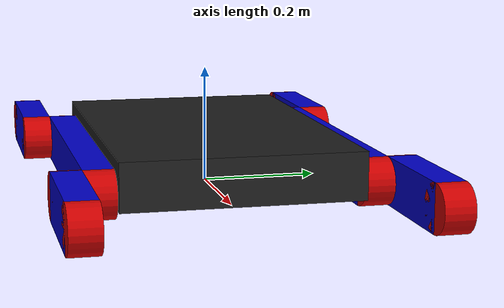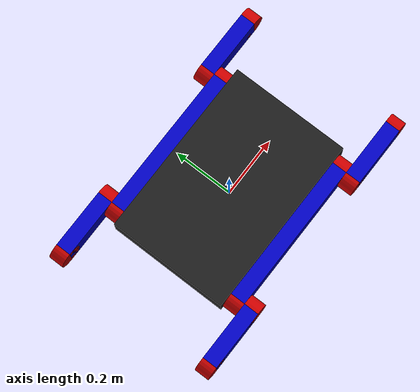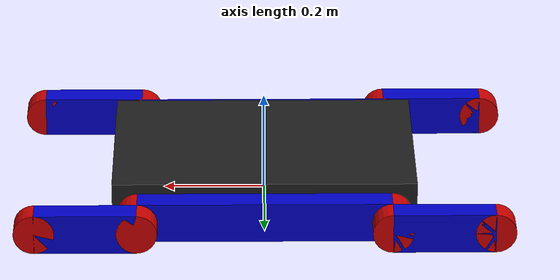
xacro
<?xml version="1.0"?>
<robot xmlns:xacro="http://ros.org/wiki/xacro" name="walrus">

  <!-- Included URDF/XACRO Files -->
  <xacro:include filename="$(find walrus_description)/urdf/base.urdf.xacro" />
  <xacro:include filename="$(find walrus_description)/urdf/simple_transform.urdf.xacro" />

  <property name="robot_ns" value="walrus" />

  <xacro:walrus robot_ns="${robot_ns}"/>

  <gazebo>
    <plugin name="gazebo_ros_control" filename="libgazebo_ros_control.so">
      <robotNamespace>/walrus</robotNamespace>
      <robotSimType>walrus_gazebo/WalrusHWSim</robotSimType>
    </plugin>
  </gazebo>

</robot>

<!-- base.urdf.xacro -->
<robot xmlns:xacro="http://ros.org/wiki/xacro" name="walrus">

    <!-- PROPERTY LIST -->
    <!--All units in m-kg-s-radians unit system -->
    <property name="M_PI" value="3.1415926535897931" />

    <property name="base_mass" value="30" />
    <property name="base_x_com" value="0"/>
    <property name="base_y_com" value="0"/>
    <property name="base_z_com" value="0"/>
    <property name="base_ixx_com_cs" value="1"/>
    <property name="base_ixy_com_cs" value="0"/>
    <property name="base_ixz_com_cs" value="0"/>
    <property name="base_iyy_com_cs" value="1"/>
    <property name="base_iyz_com_cs" value="0"/>
    <property name="base_izz_com_cs" value="1"/>

    <property name="base_x_size" value="0.6"/>
    <property name="base_y_size" value="0.4"/>
    <property name="base_z_size" value="0.08"/>

    <property name="tread_radius" value="0.04"/>
    <property name="tread_width" value="0.05"/>
    <property name="pod_inner_length" value="0.2"/>
    <property name="center_tread_inner_length" value="0.5"/>
    <property name="base_z_to_pod_origin" value="0.02" />
    <property name="tread_body_inset" value="0.03" />
    <property name="tread_cylinder_mu1" value="1.0" />
    <property name="tread_cylinder_mu2" value="1.0" />
    <property name="tread_cylinder_slip1" value="0.0" />
    <property name="tread_cylinder_slip2" value="0.0" />

    <property name="pod_mass" value="1" />
    <property name="pod_x_com" value="0"/>
    <property name="pod_y_com" value="0"/>
    <property name="pod_z_com" value="0"/>
    <property name="pod_ixx_com_cs" value="1"/>
    <property name="pod_ixy_com_cs" value="0"/>
    <property name="pod_ixz_com_cs" value="0"/>
    <property name="pod_iyy_com_cs" value="1"/>
    <property name="pod_iyz_com_cs" value="0"/>
    <property name="pod_izz_com_cs" value="1"/>

    <property name="center_tread_mass" value="1" />
    <property name="center_tread_x_com" value="0"/>
    <property name="center_tread_y_com" value="0"/>
    <property name="center_tread_z_com" value="0"/>
    <property name="center_tread_ixx_com_cs" value="1"/>
    <property name="center_tread_ixy_com_cs" value="0"/>
    <property name="center_tread_ixz_com_cs" value="0"/>
    <property name="center_tread_iyy_com_cs" value="1"/>
    <property name="center_tread_iyz_com_cs" value="0"/>
    <property name="center_tread_izz_com_cs" value="1"/>

    <property name="tread_cylinder_mass" value="0.5" />
    <property name="tread_cylinder_x_com" value="0"/>
    <property name="tread_cylinder_y_com" value="0"/>
    <property name="tread_cylinder_z_com" value="0"/>
    <property name="tread_cylinder_ixx_com_cs" value="0.001"/>
    <property name="tread_cylinder_ixy_com_cs" value="0"/>
    <property name="tread_cylinder_ixz_com_cs" value="0"/>
    <property name="tread_cylinder_iyy_com_cs" value="0.001"/>
    <property name="tread_cylinder_iyz_com_cs" value="0"/>
    <property name="tread_cylinder_izz_com_cs" value="0.001"/>

    <xacro:include filename="$(find walrus_description)/urdf/simple_transform.urdf.xacro" />
    <xacro:include filename="$(find walrus_description)/urdf/pod.urdf.xacro" />
    <xacro:include filename="$(find walrus_description)/urdf/center_tread.urdf.xacro" />

    <xacro:macro name="walrus" params="robot_ns">
      <!-- BASE-FOOTPRINT -->
      <link name="${robot_ns}/base_footprint">
	<visual>
	  <origin xyz="0 0 0" rpy="0 0 0" />
	  <geometry>
	    <box size="0.001 0.001 0.001" />
	  </geometry>
	</visual>
      </link>

      <gazebo reference="${robot_ns}/base_footprint">
	<turnGravityOff>false</turnGravityOff>
      </gazebo>

      <joint name="${robot_ns}/base_link_joint" type="fixed">
	<origin xyz="0 0 ${tread_radius + base_z_to_pod_origin}" rpy="0 0 0" />
	<parent link="${robot_ns}/base_footprint"/>
	<child link="${robot_ns}/base_link" />
      </joint>

      <!-- BASE-LINK -->
      <!--Actual body/chassis of the robot-->
      <link name="${robot_ns}/base_link">
	<inertial>
	  <mass value="${base_mass}" />
	  <origin xyz="${base_x_com} ${base_y_com} ${base_z_com}" />
	  <inertia ixx="${base_ixx_com_cs}" ixy="${base_ixy_com_cs}" ixz="${base_ixz_com_cs}"
		   iyy="${base_iyy_com_cs}" iyz="${base_iyz_com_cs}" izz="${base_izz_com_cs}" />
	</inertial>

	<visual>
	  <origin xyz="0 0 0" rpy="0 0 0" />
	  <geometry>
	    <box size = "${base_x_size} ${base_y_size} ${base_z_size}"/>
	  </geometry>
	  <material name="Black" />
	</visual>

	<collision>
	  <origin xyz="0 0 0" rpy="0 0 0" />
	  <geometry>
	    <box size = "${base_x_size} ${base_y_size} ${base_z_size}"/>
	  </geometry>
	</collision>
      </link>
      <gazebo reference="${robot_ns}/base_link">
	<material>Gazebo/Green</material>
	<turnGravityOff>false</turnGravityOff>
      </gazebo>

      <walrus_pod fb="back" lr="left" parent="${robot_ns}/base_link" translateX="-1" translateY="1" flipY="-1" robot_ns="${robot_ns}"/>
      <walrus_pod fb="back" lr="right" parent="${robot_ns}/base_link" translateX="-1" translateY="-1" flipY="-1" robot_ns="${robot_ns}"/>
      <walrus_pod fb="front" lr="left" parent="${robot_ns}/base_link" translateX="1" translateY="1" flipY="-1" robot_ns="${robot_ns}"/>
      <walrus_pod fb="front" lr="right" parent="${robot_ns}/base_link" translateX="1" translateY="-1" flipY="-1" robot_ns="${robot_ns}"/>

      <walrus_center_tread lr="left" parent="${robot_ns}/base_link" translateY="1" flipY="-1" robot_ns="${robot_ns}"/>
      <walrus_center_tread lr="right" parent="${robot_ns}/base_link" translateY="-1" flipY="-1" robot_ns="${robot_ns}"/>

      <transmission name="${robot_ns}/left_drive_trans">
        <type>transmission_interface/SimpleTransmission</type>
        <joint name="${robot_ns}/left_drive_joint"/>
        <actuator name="${robot_ns}/left_drive_actuator">
          <hardwareInterface>EffortJointInterface</hardwareInterface>
          <mechanicalReduction>1</mechanicalReduction>
        </actuator>
      </transmission>
      <transmission name="${robot_ns}/right_drive_trans">
        <type>transmission_interface/SimpleTransmission</type>
        <joint name="${robot_ns}/right_drive_joint"/>
        <actuator name="${robot_ns}/right_drive_actuator">
          <hardwareInterface>EffortJointInterface</hardwareInterface>
          <mechanicalReduction>1</mechanicalReduction>
        </actuator>
      </transmission>
    </xacro:macro>

</robot>

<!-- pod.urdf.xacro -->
<robot xmlns:xacro="http://ros.org/wiki/xacro" name="walrus_pod">

	<xacro:macro name="walrus_pod" params="fb lr parent translateX translateY flipY robot_ns"> <!--fb : front, back ; lr: left, right -->
		<link name="${robot_ns}/${fb}_${lr}_pod">
			<inertial>
				<mass value="${pod_mass}" />
				<origin xyz="${pod_x_com} ${pod_y_com} ${pod_z_com}" />
				<inertia  ixx="${pod_ixx_com_cs}" ixy="${pod_ixy_com_cs}" ixz="${pod_ixz_com_cs}"
					iyy="${pod_iyy_com_cs}" iyz="${pod_iyz_com_cs}" izz="${pod_izz_com_cs}" />
			</inertial>
			<visual>
				<origin xyz="${pod_inner_length/2} 0 0" rpy="${flipY*M_PI} 0 0" />
				<geometry>
			                <box size = "${pod_inner_length} ${tread_width} ${tread_radius*2}"/>
				</geometry>
				<material name="blue">
					<color rgba="0 0 0.8 1"/>
				</material>
			</visual>
			<collision>
				<origin xyz="${pod_inner_length/2} 0 0" rpy="${flipY*M_PI} 0 0" />
				<geometry>
			                <box size = "${pod_inner_length} ${tread_width} ${(tread_radius-tread_body_inset)*2}"/>
				</geometry>
			</collision>
		</link>
		<gazebo reference="${robot_ns}/${fb}_${lr}_pod">
			<material>Gazebo/FlatBlack</material>
			<turnGravityOff>false</turnGravityOff>
		</gazebo>

		<joint name="${robot_ns}/${fb}_${lr}_pod_joint" type="continuous">
			<parent link="${parent}"/>
			<child link="${robot_ns}/${fb}_${lr}_pod"/>
			<origin xyz="${translateX * center_tread_inner_length/2} ${translateY * (base_y_size/2+tread_width/2+tread_width)} ${-base_z_to_pod_origin}" rpy="0 ${M_PI/2-M_PI/2*translateX} 0" />
			<axis xyz="0 1 0" rpy="0 0 0" />
			<limit effort="100" velocity="100"/>
			<joint_properties damping="0.0" friction="0.0"/>
		</joint>
		<transmission name="${robot_ns}/${fb}_${lr}_pod_joint_trans">
			<type>transmission_interface/SimpleTransmission</type>
			<joint name="${robot_ns}/${fb}_${lr}_pod_joint"/>
			<actuator name="${robot_ns}/${fb}_${lr}_pod_joint_actuator">
				<hardwareInterface>EffortJointInterface</hardwareInterface>
				<mechanicalReduction>1</mechanicalReduction>
			</actuator>
		</transmission>

		<link name="${robot_ns}/${fb}_${lr}_pod_joint_cylinder">
			<inertial>
				<mass value="${tread_cylinder_mass}" />
				<origin xyz="${tread_cylinder_x_com} ${tread_cylinder_y_com} ${tread_cylinder_z_com}" />
				<inertia ixx="${tread_cylinder_ixx_com_cs}" ixy="${tread_cylinder_ixy_com_cs}" ixz="${tread_cylinder_ixz_com_cs}"
					 iyy="${tread_cylinder_iyy_com_cs}" iyz="${tread_cylinder_iyz_com_cs}" izz="${tread_cylinder_izz_com_cs}" />
			</inertial>
			<visual>
				<geometry>
					<cylinder length="${tread_width}" radius="${tread_radius}" />
				</geometry>
				<material name="red">
					<color rgba="0.8 0 0 1"/>
				</material>
			</visual>
			<collision>
				<geometry>
					<cylinder length="${tread_width}" radius="${tread_radius}" />
				</geometry>
				<friction>
					<ode>
						<mu>${tread_cylinder_mu1}</mu>
						<mu2>${tread_cylinder_mu2}</mu2>
						<slip1>${tread_cylinder_slip1}</slip1>
						<slip2>${tread_cylinder_slip2}</slip2>
					</ode>
				</friction>
			</collision>
		</link>
		<joint name="${robot_ns}/${fb}_${lr}_pod_joint_cylinder_joint" type="continuous">
			<parent link="${robot_ns}/${fb}_${lr}_pod"/>
			<child link="${robot_ns}/${fb}_${lr}_pod_joint_cylinder"/>
			<origin xyz="0 0 0" rpy="${M_PI/2} 0 0" />
			<axis xyz="0 0 1" rpy="0 0 0" />
		</joint>

		<link name="${robot_ns}/${fb}_${lr}_pod_extended_cylinder">
			<inertial>
				<mass value="${tread_cylinder_mass}" />
				<origin xyz="${tread_cylinder_x_com} ${tread_cylinder_y_com} ${tread_cylinder_z_com}" />
				<inertia ixx="${tread_cylinder_ixx_com_cs}" ixy="${tread_cylinder_ixy_com_cs}" ixz="${tread_cylinder_ixz_com_cs}"
					 iyy="${tread_cylinder_iyy_com_cs}" iyz="${tread_cylinder_iyz_com_cs}" izz="${tread_cylinder_izz_com_cs}" />
			</inertial>
			<visual>
				<geometry>
					<cylinder length="${tread_width}" radius="${tread_radius}" />
				</geometry>
				<material name="red">
					<color rgba="0.8 0 0 1"/>
				</material>
			</visual>
			<collision>
				<geometry>
					<cylinder length="${tread_width}" radius="${tread_radius}" />
				</geometry>
				<friction>
					<ode>
						<mu>${tread_cylinder_mu1}</mu>
						<mu2>${tread_cylinder_mu2}</mu2>
						<slip1>${tread_cylinder_slip1}</slip1>
						<slip2>${tread_cylinder_slip2}</slip2>
					</ode>
				</friction>
			</collision>
		</link>
		<joint name="${robot_ns}/${fb}_${lr}_pod_extended_cylinder_joint" type="continuous">
			<parent link="${robot_ns}/${fb}_${lr}_pod"/>
			<child link="${robot_ns}/${fb}_${lr}_pod_extended_cylinder"/>
			<origin xyz="${pod_inner_length} 0 0" rpy="${M_PI/2} 0 0" />
			<axis xyz="0 0 1" rpy="0 0 0" />
		</joint>

		<transmission name="${robot_ns}/${fb}_${lr}_pod_drive_extended_trans">
			<type>transmission_interface/SimpleTransmission</type>
			<joint name="${robot_ns}/${fb}_${lr}_pod_extended_cylinder_joint"/>
			<actuator name="${robot_ns}/${lr}_pod_drive_actuator">
				<hardwareInterface>EffortJointInterface</hardwareInterface>
				<mechanicalReduction>1</mechanicalReduction>
			</actuator>
		</transmission>
		<transmission name="${robot_ns}/${fb}_${lr}_pod_drive_joint_trans">
			<type>transmission_interface/SimpleTransmission</type>
			<joint name="${robot_ns}/${fb}_${lr}_pod_joint_cylinder_joint"/>
			<actuator name="${robot_ns}/${lr}_pod_drive_actuator">
				<hardwareInterface>EffortJointInterface</hardwareInterface>
				<mechanicalReduction>1</mechanicalReduction>
			</actuator>
		</transmission>
  	</xacro:macro>
</robot>

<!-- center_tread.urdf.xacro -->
<robot xmlns:xacro="http://ros.org/wiki/xacro" name="walrus_center_tread">

	<xacro:macro name="walrus_center_tread" params="lr parent translateY flipY robot_ns"> <!--lr: left, right -->
		<link name="${robot_ns}/${lr}_center_tread">
			<inertial>
				<mass value="${center_tread_mass}" />
				<origin xyz="${center_tread_x_com} ${center_tread_y_com} ${center_tread_z_com}" />
				<inertia  ixx="${center_tread_ixx_com_cs}" ixy="${center_tread_ixy_com_cs}" ixz="${center_tread_ixz_com_cs}"
					iyy="${center_tread_iyy_com_cs}" iyz="${center_tread_iyz_com_cs}" izz="${center_tread_izz_com_cs}" />
			</inertial>
			<visual>
				<origin xyz="0 0 0" rpy="${flipY*M_PI} 0 0" />
				<geometry>
			                <box size = "${center_tread_inner_length} ${tread_width} ${tread_radius*2}"/>
				</geometry>
				<material name="blue">
					<color rgba="0 0 0.8 1"/>
				</material>
			</visual>
			<collision>
				<geometry>
			                <box size = "${center_tread_inner_length} ${tread_width} ${(tread_radius-tread_body_inset)*2}"/>
				</geometry>
			</collision>
		</link>

		<joint name="${robot_ns}/${lr}_center_tread_joint" type="fixed">
			<parent link="${parent}"/>
			<child link="${robot_ns}/${lr}_center_tread"/>
			<origin xyz="0 ${translateY * (base_y_size/2+tread_width/2)} ${-base_z_to_pod_origin}" rpy="0 0 0" />
		</joint>

		<link name="${robot_ns}/${lr}_center_tread_front_cylinder">
			<inertial>
				<mass value="${tread_cylinder_mass}" />
				<origin xyz="${tread_cylinder_x_com} ${tread_cylinder_y_com} ${tread_cylinder_z_com}" />
				<inertia ixx="${tread_cylinder_ixx_com_cs}" ixy="${tread_cylinder_ixy_com_cs}" ixz="${tread_cylinder_ixz_com_cs}"
					 iyy="${tread_cylinder_iyy_com_cs}" iyz="${tread_cylinder_iyz_com_cs}" izz="${tread_cylinder_izz_com_cs}" />
			</inertial>
		<visual>
				<geometry>
					<cylinder length="${tread_width}" radius="${tread_radius}" />
				</geometry>
				<material name="red">
					<color rgba="0.8 0 0 1"/>
				</material>
			</visual>
			<collision>
				<geometry>
					<cylinder length="${tread_width}" radius="${tread_radius}" />
				</geometry>
				<friction>
					<ode>
						<mu>${tread_cylinder_mu1}</mu>
						<mu2>${tread_cylinder_mu2}</mu2>
						<slip1>${tread_cylinder_slip1}</slip1>
						<slip2>${tread_cylinder_slip2}</slip2>
					</ode>
				</friction>
			</collision>
		</link>
		<joint name="${robot_ns}/${lr}_center_tread_front_cylinder_joint" type="continuous">
			<parent link="${robot_ns}/${lr}_center_tread"/>
			<child link="${robot_ns}/${lr}_center_tread_front_cylinder"/>
			<origin xyz="${center_tread_inner_length/2} 0 0" rpy="${M_PI/2} 0 0" />
			<axis xyz="0 0 1" rpy="0 0 0" />
		</joint>

		<link name="${robot_ns}/${lr}_center_tread_back_cylinder">
			<inertial>
				<mass value="${tread_cylinder_mass}" />
				<origin xyz="${tread_cylinder_x_com} ${tread_cylinder_y_com} ${tread_cylinder_z_com}" />
				<inertia ixx="${tread_cylinder_ixx_com_cs}" ixy="${tread_cylinder_ixy_com_cs}" ixz="${tread_cylinder_ixz_com_cs}"
					 iyy="${tread_cylinder_iyy_com_cs}" iyz="${tread_cylinder_iyz_com_cs}" izz="${tread_cylinder_izz_com_cs}" />
			</inertial>
			<visual>
				<geometry>
					<cylinder length="${tread_width}" radius="${tread_radius}" />
				</geometry>
				<material name="red">
					<color rgba="0.8 0 0 1"/>
				</material>
			</visual>
			<collision>
				<geometry>
					<cylinder length="${tread_width}" radius="${tread_radius}" />
				</geometry>
				<friction>
					<ode>
						<mu>${tread_cylinder_mu1}</mu>
						<mu2>${tread_cylinder_mu2}</mu2>
						<slip1>${tread_cylinder_slip1}</slip1>
						<slip2>${tread_cylinder_slip2}</slip2>
					</ode>
				</friction>
			</collision>
		</link>
		<joint name="${robot_ns}/${lr}_center_tread_back_cylinder_joint" type="continuous">
			<parent link="${robot_ns}/${lr}_center_tread"/>
			<child link="${robot_ns}/${lr}_center_tread_back_cylinder"/>
			<origin xyz="${-center_tread_inner_length/2} 0 0" rpy="${M_PI/2} 0 0" />
			<axis xyz="0 0 1" rpy="0 0 0" />
		</joint>

		<transmission name="${robot_ns}/${lr}_center_tread_drive_back_trans">
			<type>transmission_interface/SimpleTransmission</type>
			<joint name="${robot_ns}/${lr}_center_tread_back_cylinder_joint"/>
			<actuator name="${robot_ns}/${lr}_pod_drive_actuator">
				<hardwareInterface>EffortJointInterface</hardwareInterface>
				<mechanicalReduction>1</mechanicalReduction>
			</actuator>
		</transmission>
		<transmission name="${robot_ns}/${lr}_center_tread_drive_front_trans">
			<type>transmission_interface/SimpleTransmission</type>
			<joint name="${robot_ns}/${lr}_center_tread_front_cylinder_joint"/>
			<actuator name="${robot_ns}/${lr}_pod_drive_actuator">
				<hardwareInterface>EffortJointInterface</hardwareInterface>
				<mechanicalReduction>1</mechanicalReduction>
			</actuator>
		</transmission>
  	</xacro:macro>
</robot>
